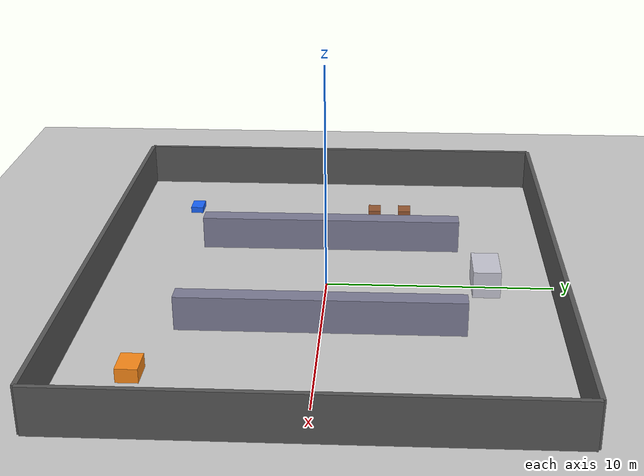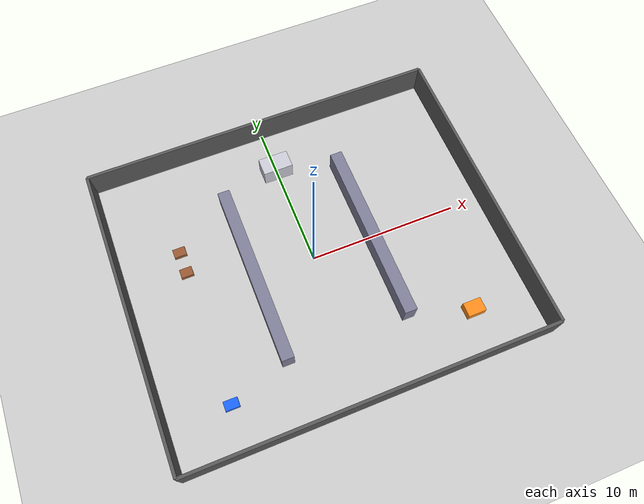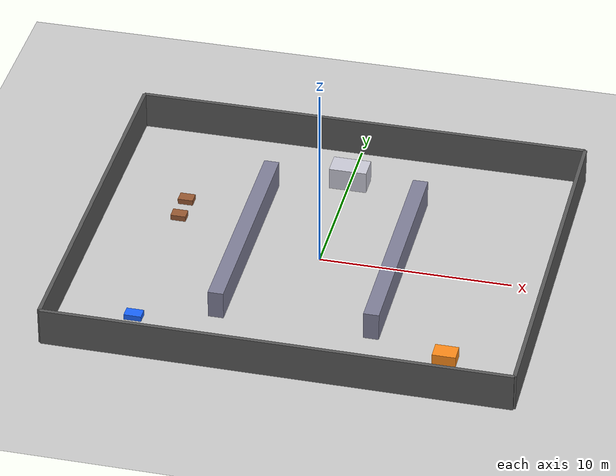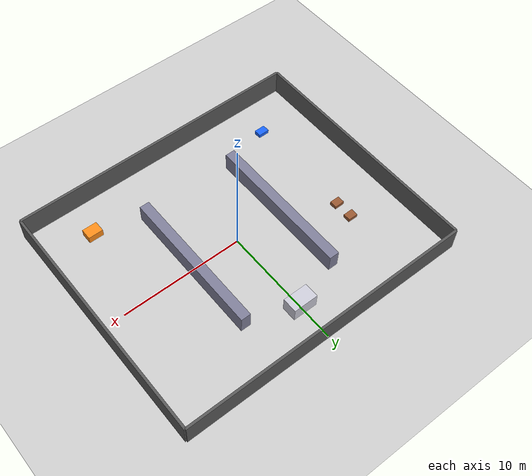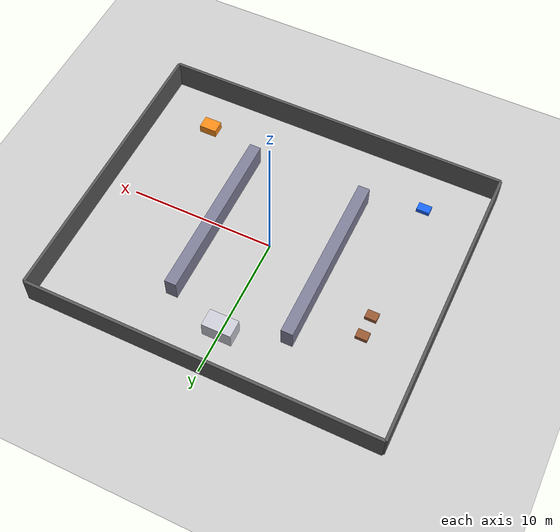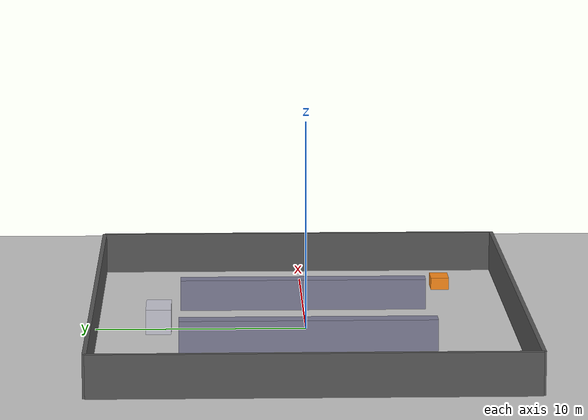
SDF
<?xml version="1.0" ?>
<sdf version="1.6">
  <world name="warehouse_world">
    <gravity>0 0 -9.8</gravity>
    <magnetic_field>6e-06 2.3e-05 -4.2e-05</magnetic_field>
    <physics type="ode">
      <real_time_update_rate>1000</real_time_update_rate>
      <max_step_size>0.001</max_step_size>
    </physics>

    <include>
      <uri>model://ground_plane</uri>
    </include>
    <include>
      <uri>model://sun</uri>
    </include>

    <!-- Warehouse boundary -->
    <model name="warehouse_shell">
      <static>true</static>
      <link name="shell_link">
        <collision name="north_wall_collision">
          <pose>0 10 1 0 0 0</pose>
          <geometry><box><size>24 0.2 2</size></box></geometry>
        </collision>
        <visual name="north_wall_visual">
          <pose>0 10 1 0 0 0</pose>
          <geometry><box><size>24 0.2 2</size></box></geometry>
          <material><ambient>0.35 0.35 0.35 1</ambient></material>
        </visual>

        <collision name="south_wall_collision">
          <pose>0 -10 1 0 0 0</pose>
          <geometry><box><size>24 0.2 2</size></box></geometry>
        </collision>
        <visual name="south_wall_visual">
          <pose>0 -10 1 0 0 0</pose>
          <geometry><box><size>24 0.2 2</size></box></geometry>
          <material><ambient>0.35 0.35 0.35 1</ambient></material>
        </visual>

        <collision name="east_wall_collision">
          <pose>12 0 1 0 0 0</pose>
          <geometry><box><size>0.2 20 2</size></box></geometry>
        </collision>
        <visual name="east_wall_visual">
          <pose>12 0 1 0 0 0</pose>
          <geometry><box><size>0.2 20 2</size></box></geometry>
          <material><ambient>0.35 0.35 0.35 1</ambient></material>
        </visual>

        <collision name="west_wall_collision">
          <pose>-12 0 1 0 0 0</pose>
          <geometry><box><size>0.2 20 2</size></box></geometry>
        </collision>
        <visual name="west_wall_visual">
          <pose>-12 0 1 0 0 0</pose>
          <geometry><box><size>0.2 20 2</size></box></geometry>
          <material><ambient>0.35 0.35 0.35 1</ambient></material>
        </visual>
      </link>
    </model>

    <!-- Shelving rack rows -->
    <model name="rack_row_1">
      <static>true</static>
      <pose>-4 0 0.75 0 0 0</pose>
      <link name="rack_link">
        <collision name="rack_collision">
          <geometry><box><size>0.8 12 1.5</size></box></geometry>
        </collision>
        <visual name="rack_visual">
          <geometry><box><size>0.8 12 1.5</size></box></geometry>
          <material><ambient>0.5 0.5 0.6 1</ambient></material>
        </visual>
      </link>
    </model>

    <model name="rack_row_2">
      <static>true</static>
      <pose>4 0 0.75 0 0 0</pose>
      <link name="rack_link">
        <collision name="rack_collision">
          <geometry><box><size>0.8 12 1.5</size></box></geometry>
        </collision>
        <visual name="rack_visual">
          <geometry><box><size>0.8 12 1.5</size></box></geometry>
          <material><ambient>0.5 0.5 0.6 1</ambient></material>
        </visual>
      </link>
    </model>

    <!-- AGV placeholder -->
    <model name="agv_placeholder">
      <static>false</static>
      <pose>-8 -7 0.2 0 0 0</pose>
      <link name="base">
        <inertial><mass>30</mass></inertial>
        <collision name="agv_collision">
          <geometry><box><size>0.9 0.6 0.3</size></box></geometry>
        </collision>
        <visual name="agv_visual">
          <geometry><box><size>0.9 0.6 0.3</size></box></geometry>
          <material><ambient>0.1 0.4 1.0 1</ambient></material>
        </visual>
      </link>
    </model>

    <!-- Forklift placeholder -->
    <model name="forklift_placeholder">
      <static>false</static>
      <pose>8 -7 0.35 0 0 0</pose>
      <link name="base">
        <inertial><mass>80</mass></inertial>
        <collision name="fork_collision">
          <geometry><box><size>1.2 0.9 0.6</size></box></geometry>
        </collision>
        <visual name="fork_visual">
          <geometry><box><size>1.2 0.9 0.6</size></box></geometry>
          <material><ambient>1.0 0.55 0.1 1</ambient></material>
        </visual>
      </link>
    </model>

    <!-- Robotic arm station placeholder -->
    <model name="arm_station_placeholder">
      <static>true</static>
      <pose>0 7 0.6 0 0 0</pose>
      <link name="station">
        <collision name="station_collision">
          <geometry><box><size>2.0 1.2 1.2</size></box></geometry>
        </collision>
        <visual name="station_visual">
          <geometry><box><size>2.0 1.2 1.2</size></box></geometry>
          <material><ambient>0.8 0.8 0.85 1</ambient></material>
        </visual>
      </link>
    </model>

    <!-- Pallet staging area -->
    <model name="pallet_1">
      <static>false</static>
      <pose>-8 2 0.15 0 0 0</pose>
      <link name="body">
        <inertial><mass>12</mass></inertial>
        <collision name="collision">
          <geometry><box><size>0.8 0.6 0.3</size></box></geometry>
        </collision>
        <visual name="visual">
          <geometry><box><size>0.8 0.6 0.3</size></box></geometry>
          <material><ambient>0.6 0.35 0.2 1</ambient></material>
        </visual>
      </link>
    </model>

    <model name="pallet_2">
      <static>false</static>
      <pose>-8 3.5 0.15 0 0 0</pose>
      <link name="body">
        <inertial><mass>12</mass></inertial>
        <collision name="collision">
          <geometry><box><size>0.8 0.6 0.3</size></box></geometry>
        </collision>
        <visual name="visual">
          <geometry><box><size>0.8 0.6 0.3</size></box></geometry>
          <material><ambient>0.6 0.35 0.2 1</ambient></material>
        </visual>
      </link>
    </model>
  </world>
</sdf>
